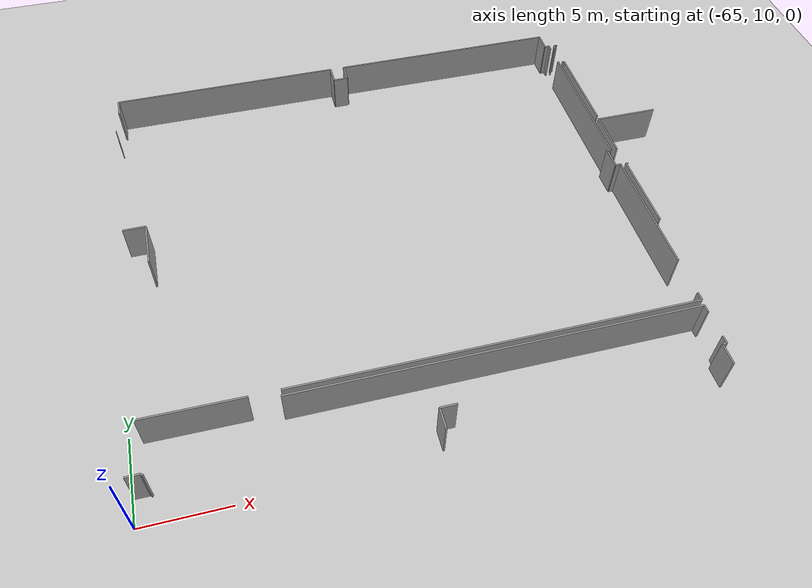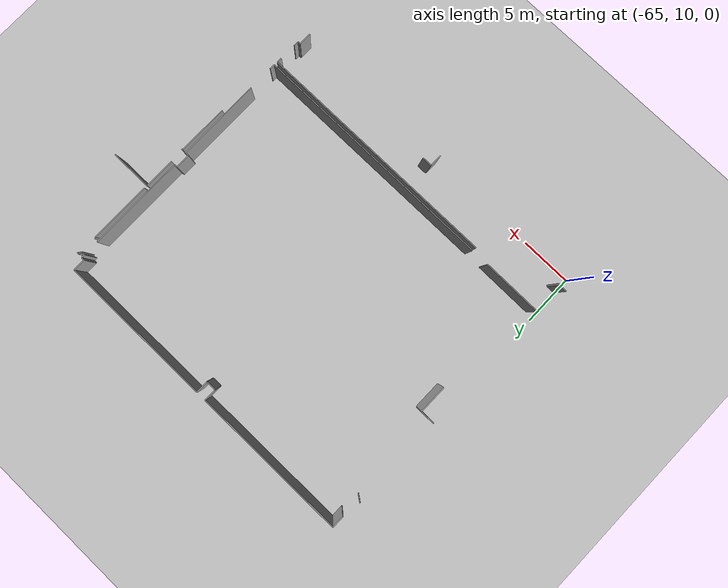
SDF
<sdf version="1.6">
 <world name="default">
  <model name="ground_plane">
   <static>1</static>
   <link name="link">
    <collision name="collision">
     <geometry><plane><normal>0 0 1</normal><size>100 100</size></plane></geometry>
     <surface><friction><ode><mu>100</mu><mu2>50</mu2></ode></friction></surface>
    </collision>
    <visual name="visual">
     <cast_shadows>0</cast_shadows>
     <geometry><plane><normal>0 0 1</normal><size>100 100</size></plane></geometry>
     <material>
      <script><uri>file://media/materials/scripts/gazebo.material</uri><name>Gazebo/Grey</name></script>
     </material>
    </visual>
   </link>
  </model>
  <model name="0510035737_A_40_1_105">
   <static>1</static>
   <link name="Wall_26">
    <collision name="Wall_26_Collision">
     <geometry><box><size>2.81122303073 0.1 2.5</size></box></geometry>
     <pose>1.40561151536 0 1.25 0 0 0</pose>
    </collision>
    <visual name="Wall_26_Visual">
     <pose>1.40561151536 0 1.25 0 0 0</pose>
     <geometry><box><size>2.81122303073 0.1 2.5</size></box></geometry>
     <material>
      <script><uri>file://media/materials/scripts/gazebo.material</uri><name>Gazebo/Grey</name></script>
      <ambient>1 1 1 1</ambient>
     </material>
    </visual>
    <pose>17.3302405389 -21.0029551015 0 0 0 1.57079632679</pose>
   </link>
   <link name="Wall_27">
    <collision name="Wall_27_Collision">
     <geometry><box><size>1.40421340282 0.1 2.5</size></box></geometry>
     <pose>0.702106701408 0 1.25 0 0 0</pose>
    </collision>
    <visual name="Wall_27_Visual">
     <pose>0.702106701408 0 1.25 0 0 0</pose>
     <geometry><box><size>1.40421340282 0.1 2.5</size></box></geometry>
     <material>
      <script><uri>file://media/materials/scripts/gazebo.material</uri><name>Gazebo/Grey</name></script>
      <ambient>1 1 1 1</ambient>
     </material>
    </visual>
    <pose>17.3302405389 -18.1917320708 0 0 0 3.14159265359</pose>
   </link>
   <link name="Wall_29">
    <collision name="Wall_29_Collision">
     <geometry><box><size>0.0368593308125 0.1 2.5</size></box></geometry>
     <pose>0.0184296654062 0 1.25 0 0 0</pose>
    </collision>
    <visual name="Wall_29_Visual">
     <pose>0.0184296654062 0 1.25 0 0 0</pose>
     <geometry><box><size>0.0368593308125 0.1 2.5</size></box></geometry>
     <material>
      <script><uri>file://media/materials/scripts/gazebo.material</uri><name>Gazebo/Grey</name></script>
      <ambient>1 1 1 1</ambient>
     </material>
    </visual>
    <pose>15.9260271361 -9.13679260271 0 0 0 3.14159265359</pose>
   </link>
   <link name="Wall_33">
    <collision name="Wall_33_Collision">
     <geometry><box><size>1.20974865749 0.1 2.5</size></box></geometry>
     <pose>0.604874328747 0 1.25 0 0 0</pose>
    </collision>
    <visual name="Wall_33_Visual">
     <pose>0.604874328747 0 1.25 0 0 0</pose>
     <geometry><box><size>1.20974865749 0.1 2.5</size></box></geometry>
     <material>
      <script><uri>file://media/materials/scripts/gazebo.material</uri><name>Gazebo/Grey</name></script>
      <ambient>1 1 1 1</ambient>
     </material>
    </visual>
    <pose>16.189634902 -7.36652791459 0 0 0 1.57079632679</pose>
   </link>
   <link name="Wall_34">
    <collision name="Wall_34_Collision">
     <geometry><box><size>15.0515712879 0.1 2.5</size></box></geometry>
     <pose>7.52578564393 0 1.25 0 0 0</pose>
    </collision>
    <visual name="Wall_34_Visual">
     <pose>7.52578564393 0 1.25 0 0 0</pose>
     <geometry><box><size>15.0515712879 0.1 2.5</size></box></geometry>
     <material>
      <script><uri>file://media/materials/scripts/gazebo.material</uri><name>Gazebo/Grey</name></script>
      <ambient>1 1 1 1</ambient>
     </material>
    </visual>
    <pose>16.189634902 -6.15677925709 0 0 0 0.0</pose>
   </link>
   <link name="Wall_35">
    <collision name="Wall_35_Collision">
     <geometry><box><size>1.22296717613 0.1 2.5</size></box></geometry>
     <pose>0.611483588065 0 1.25 0 0 0</pose>
    </collision>
    <visual name="Wall_35_Visual">
     <pose>0.611483588065 0 1.25 0 0 0</pose>
     <geometry><box><size>1.22296717613 0.1 2.5</size></box></geometry>
     <material>
      <script><uri>file://media/materials/scripts/gazebo.material</uri><name>Gazebo/Grey</name></script>
      <ambient>1 1 1 1</ambient>
     </material>
    </visual>
    <pose>31.2412061898 -6.15677925709 0 0 0 -1.57079632679</pose>
   </link>
   <link name="Wall_36">
    <collision name="Wall_36_Collision">
     <geometry><box><size>0.961138826221 0.1 2.5</size></box></geometry>
     <pose>0.48056941311 0 1.25 0 0 0</pose>
    </collision>
    <visual name="Wall_36_Visual">
     <pose>0.48056941311 0 1.25 0 0 0</pose>
     <geometry><box><size>0.961138826221 0.1 2.5</size></box></geometry>
     <material>
      <script><uri>file://media/materials/scripts/gazebo.material</uri><name>Gazebo/Grey</name></script>
      <ambient>1 1 1 1</ambient>
     </material>
    </visual>
    <pose>31.2412061898 -7.37974643322 0 0 0 0.0</pose>
   </link>
   <link name="Wall_37">
    <collision name="Wall_37_Collision">
     <geometry><box><size>1.22118776016 0.1 2.5</size></box></geometry>
     <pose>0.61059388008 0 1.25 0 0 0</pose>
    </collision>
    <visual name="Wall_37_Visual">
     <pose>0.61059388008 0 1.25 0 0 0</pose>
     <geometry><box><size>1.22118776016 0.1 2.5</size></box></geometry>
     <material>
      <script><uri>file://media/materials/scripts/gazebo.material</uri><name>Gazebo/Grey</name></script>
      <ambient>1 1 1 1</ambient>
     </material>
    </visual>
    <pose>32.202345016 -7.37974643322 0 0 0 1.57079632679</pose>
   </link>
   <link name="Wall_38">
    <collision name="Wall_38_Collision">
     <geometry><box><size>15.0469956468 0.1 2.5</size></box></geometry>
     <pose>7.52349782339 0 1.25 0 0 0</pose>
    </collision>
    <visual name="Wall_38_Visual">
     <pose>7.52349782339 0 1.25 0 0 0</pose>
     <geometry><box><size>15.0469956468 0.1 2.5</size></box></geometry>
     <material>
      <script><uri>file://media/materials/scripts/gazebo.material</uri><name>Gazebo/Grey</name></script>
      <ambient>1 1 1 1</ambient>
     </material>
    </visual>
    <pose>32.202345016 -6.15855867306 0 0 0 0.0</pose>
   </link>
   <link name="Wall_39">
    <collision name="Wall_39_Collision">
     <geometry><box><size>1.1972927457 0.1 2.5</size></box></geometry>
     <pose>0.598646372851 0 1.25 0 0 0</pose>
    </collision>
    <visual name="Wall_39_Visual">
     <pose>0.598646372851 0 1.25 0 0 0</pose>
     <geometry><box><size>1.1972927457 0.1 2.5</size></box></geometry>
     <material>
      <script><uri>file://media/materials/scripts/gazebo.material</uri><name>Gazebo/Grey</name></script>
      <ambient>1 1 1 1</ambient>
     </material>
    </visual>
    <pose>47.2493406628 -6.15855867306 0 0 0 -1.57079632679</pose>
   </link>
   <link name="Wall_40">
    <collision name="Wall_40_Collision">
     <geometry><box><size>0.305805344603 0.1 2.5</size></box></geometry>
     <pose>0.152902672301 0 1.25 0 0 0</pose>
    </collision>
    <visual name="Wall_40_Visual">
     <pose>0.152902672301 0 1.25 0 0 0</pose>
     <geometry><box><size>0.305805344603 0.1 2.5</size></box></geometry>
     <material>
      <script><uri>file://media/materials/scripts/gazebo.material</uri><name>Gazebo/Grey</name></script>
      <ambient>1 1 1 1</ambient>
     </material>
    </visual>
    <pose>47.2493406628 -7.35585141877 0 0 0 0.0</pose>
   </link>
   <link name="Wall_41">
    <collision name="Wall_41_Collision">
     <geometry><box><size>0.372660544628 0.1 2.5</size></box></geometry>
     <pose>0.186330272314 0 1.25 0 0 0</pose>
    </collision>
    <visual name="Wall_41_Visual">
     <pose>0.186330272314 0 1.25 0 0 0</pose>
     <geometry><box><size>0.372660544628 0.1 2.5</size></box></geometry>
     <material>
      <script><uri>file://media/materials/scripts/gazebo.material</uri><name>Gazebo/Grey</name></script>
      <ambient>1 1 1 1</ambient>
     </material>
    </visual>
    <pose>47.5551460074 -7.35585141877 0 0 0 -1.57079632679</pose>
   </link>
   <link name="Wall_42">
    <collision name="Wall_42_Collision">
     <geometry><box><size>9.49674303327 0.1 2.5</size></box></geometry>
     <pose>4.74837151663 0 1.25 0 0 0</pose>
    </collision>
    <visual name="Wall_42_Visual">
     <pose>4.74837151663 0 1.25 0 0 0</pose>
     <geometry><box><size>9.49674303327 0.1 2.5</size></box></geometry>
     <material>
      <script><uri>file://media/materials/scripts/gazebo.material</uri><name>Gazebo/Grey</name></script>
      <ambient>1 1 1 1</ambient>
     </material>
    </visual>
    <pose>47.5551460074 -9.24228654952 0 0 0 -1.57079632679</pose>
   </link>
   <link name="Wall_43">
    <collision name="Wall_43_Collision">
     <geometry><box><size>0.279368307331 0.1 2.5</size></box></geometry>
     <pose>0.139684153665 0 1.25 0 0 0</pose>
    </collision>
    <visual name="Wall_43_Visual">
     <pose>0.139684153665 0 1.25 0 0 0</pose>
     <geometry><box><size>0.279368307331 0.1 2.5</size></box></geometry>
     <material>
      <script><uri>file://media/materials/scripts/gazebo.material</uri><name>Gazebo/Grey</name></script>
      <ambient>1 1 1 1</ambient>
     </material>
    </visual>
    <pose>47.5551460074 -18.7390295828 0 0 0 3.14159265359</pose>
   </link>
   <link name="Wall_44">
    <collision name="Wall_44_Collision">
     <geometry><box><size>1.40624702107 0.1 2.5</size></box></geometry>
     <pose>0.703123510534 0 1.25 0 0 0</pose>
    </collision>
    <visual name="Wall_44_Visual">
     <pose>0.703123510534 0 1.25 0 0 0</pose>
     <geometry><box><size>1.40624702107 0.1 2.5</size></box></geometry>
     <material>
      <script><uri>file://media/materials/scripts/gazebo.material</uri><name>Gazebo/Grey</name></script>
      <ambient>1 1 1 1</ambient>
     </material>
    </visual>
    <pose>47.2757777001 -18.7390295828 0 0 0 -1.57079632679</pose>
   </link>
   <link name="Wall_45">
    <collision name="Wall_45_Collision">
     <geometry><box><size>0.328175145372 0.1 2.5</size></box></geometry>
     <pose>0.164087572686 0 1.25 0 0 0</pose>
    </collision>
    <visual name="Wall_45_Visual">
     <pose>0.164087572686 0 1.25 0 0 0</pose>
     <geometry><box><size>0.328175145372 0.1 2.5</size></box></geometry>
     <material>
      <script><uri>file://media/materials/scripts/gazebo.material</uri><name>Gazebo/Grey</name></script>
      <ambient>1 1 1 1</ambient>
     </material>
    </visual>
    <pose>47.2757777001 -20.1452766039 0 0 0 0.0</pose>
   </link>
   <link name="Wall_46">
    <collision name="Wall_46_Collision">
     <geometry><box><size>8.22598582822 0.1 2.5</size></box></geometry>
     <pose>4.11299291411 0 1.25 0 0 0</pose>
    </collision>
    <visual name="Wall_46_Visual">
     <pose>4.11299291411 0 1.25 0 0 0</pose>
     <geometry><box><size>8.22598582822 0.1 2.5</size></box></geometry>
     <material>
      <script><uri>file://media/materials/scripts/gazebo.material</uri><name>Gazebo/Grey</name></script>
      <ambient>1 1 1 1</ambient>
     </material>
    </visual>
    <pose>47.6039528455 -20.1452766039 0 0 0 -1.57079632679</pose>
   </link>
   <link name="Wall_47">
    <collision name="Wall_47_Collision">
     <geometry><box><size>0.518064249627 0.1 2.5</size></box></geometry>
     <pose>0.259032124813 0 1.25 0 0 0</pose>
    </collision>
    <visual name="Wall_47_Visual">
     <pose>0.259032124813 0 1.25 0 0 0</pose>
     <geometry><box><size>0.518064249627 0.1 2.5</size></box></geometry>
     <material>
      <script><uri>file://media/materials/scripts/gazebo.material</uri><name>Gazebo/Grey</name></script>
      <ambient>1 1 1 1</ambient>
     </material>
    </visual>
    <pose>47.6039528455 -30.8014362429 0 0 0 -1.57079632679</pose>
   </link>
   <link name="Wall_48">
    <collision name="Wall_48_Collision">
     <geometry><box><size>24.0973594738 0.1 2.5</size></box></geometry>
     <pose>12.0486797369 0 1.25 0 0 0</pose>
    </collision>
    <visual name="Wall_48_Visual">
     <pose>12.0486797369 0 1.25 0 0 0</pose>
     <geometry><box><size>24.0973594738 0.1 2.5</size></box></geometry>
     <material>
      <script><uri>file://media/materials/scripts/gazebo.material</uri><name>Gazebo/Grey</name></script>
      <ambient>1 1 1 1</ambient>
     </material>
    </visual>
    <pose>47.6039528455 -31.3195004925 0 0 0 3.14159265359</pose>
   </link>
   <link name="Wall_49">
    <collision name="Wall_49_Collision">
     <geometry><box><size>5.86281006739 0.1 2.5</size></box></geometry>
     <pose>2.9314050337 0 1.25 0 0 0</pose>
    </collision>
    <visual name="Wall_49_Visual">
     <pose>2.9314050337 0 1.25 0 0 0</pose>
     <geometry><box><size>5.86281006739 0.1 2.5</size></box></geometry>
     <material>
      <script><uri>file://media/materials/scripts/gazebo.material</uri><name>Gazebo/Grey</name></script>
      <ambient>1 1 1 1</ambient>
     </material>
    </visual>
    <pose>21.7752216326 -31.3195004925 0 0 0 3.13461188852</pose>
   </link>
   <link name="Wall_56">
    <collision name="Wall_56_Collision">
     <geometry><box><size>24.1095611833 0.1 2.5</size></box></geometry>
     <pose>12.0547805917 0 1.25 0 0 0</pose>
    </collision>
    <visual name="Wall_56_Visual">
     <pose>12.0547805917 0 1.25 0 0 0</pose>
     <geometry><box><size>24.1095611833 0.1 2.5</size></box></geometry>
     <material>
      <script><uri>file://media/materials/scripts/gazebo.material</uri><name>Gazebo/Grey</name></script>
      <ambient>1 1 1 1</ambient>
     </material>
    </visual>
    <pose>23.4374503511 -31.6852975755 0 0 0 0.0</pose>
   </link>
   <link name="Wall_57">
    <collision name="Wall_57_Collision">
     <geometry><box><size>0.492898223762 0.1 2.5</size></box></geometry>
     <pose>0.246449111881 0 1.25 0 0 0</pose>
    </collision>
    <visual name="Wall_57_Visual">
     <pose>0.246449111881 0 1.25 0 0 0</pose>
     <geometry><box><size>0.492898223762 0.1 2.5</size></box></geometry>
     <material>
      <script><uri>file://media/materials/scripts/gazebo.material</uri><name>Gazebo/Grey</name></script>
      <ambient>1 1 1 1</ambient>
     </material>
    </visual>
    <pose>47.5470115344 -31.6852975755 0 0 0 -1.57079632679</pose>
   </link>
   <link name="Wall_58">
    <collision name="Wall_58_Collision">
     <geometry><box><size>0.483746941629 0.1 2.5</size></box></geometry>
     <pose>0.241873470814 0 1.25 0 0 0</pose>
    </collision>
    <visual name="Wall_58_Visual">
     <pose>0.241873470814 0 1.25 0 0 0</pose>
     <geometry><box><size>0.483746941629 0.1 2.5</size></box></geometry>
     <material>
      <script><uri>file://media/materials/scripts/gazebo.material</uri><name>Gazebo/Grey</name></script>
      <ambient>1 1 1 1</ambient>
     </material>
    </visual>
    <pose>47.5470115344 -33.8244097741 0 0 0 -1.57079632679</pose>
   </link>
   <link name="Wall_59">
    <collision name="Wall_59_Collision">
     <geometry><box><size>0.269708620635 0.1 2.5</size></box></geometry>
     <pose>0.134854310317 0 1.25 0 0 0</pose>
    </collision>
    <visual name="Wall_59_Visual">
     <pose>0.134854310317 0 1.25 0 0 0</pose>
     <geometry><box><size>0.269708620635 0.1 2.5</size></box></geometry>
     <material>
      <script><uri>file://media/materials/scripts/gazebo.material</uri><name>Gazebo/Grey</name></script>
      <ambient>1 1 1 1</ambient>
     </material>
    </visual>
    <pose>47.5470115344 -34.3081567157 0 0 0 3.14159265359</pose>
   </link>
   <link name="Wall_60">
    <collision name="Wall_60_Collision">
     <geometry><box><size>1.25397985447 0.1 2.5</size></box></geometry>
     <pose>0.626989927235 0 1.25 0 0 0</pose>
    </collision>
    <visual name="Wall_60_Visual">
     <pose>0.626989927235 0 1.25 0 0 0</pose>
     <geometry><box><size>1.25397985447 0.1 2.5</size></box></geometry>
     <material>
      <script><uri>file://media/materials/scripts/gazebo.material</uri><name>Gazebo/Grey</name></script>
      <ambient>1 1 1 1</ambient>
     </material>
    </visual>
    <pose>47.2773029138 -34.3081567157 0 0 0 -1.57079632679</pose>
   </link>
   <link name="Wall_63">
    <collision name="Wall_63_Collision">
     <geometry><box><size>0.975374153983 0.1 2.5</size></box></geometry>
     <pose>0.487687076992 0 1.25 0 0 0</pose>
    </collision>
    <visual name="Wall_63_Visual">
     <pose>0.487687076992 0 1.25 0 0 0</pose>
     <geometry><box><size>0.975374153983 0.1 2.5</size></box></geometry>
     <material>
      <script><uri>file://media/materials/scripts/gazebo.material</uri><name>Gazebo/Grey</name></script>
      <ambient>1 1 1 1</ambient>
     </material>
    </visual>
    <pose>32.2310698739 -34.3254424708 0 0 0 3.14159265359</pose>
   </link>
   <link name="Wall_64">
    <collision name="Wall_64_Collision">
     <geometry><box><size>1.22855962632 0.1 2.5</size></box></geometry>
     <pose>0.614279813161 0 1.25 0 0 0</pose>
    </collision>
    <visual name="Wall_64_Visual">
     <pose>0.614279813161 0 1.25 0 0 0</pose>
     <geometry><box><size>1.22855962632 0.1 2.5</size></box></geometry>
     <material>
      <script><uri>file://media/materials/scripts/gazebo.material</uri><name>Gazebo/Grey</name></script>
      <ambient>1 1 1 1</ambient>
     </material>
    </visual>
    <pose>31.2556957199 -34.3254424708 0 0 0 -1.57079632679</pose>
   </link>
   <link name="Wall_67">
    <collision name="Wall_67_Collision">
     <geometry><box><size>0.153682256566 0.1 2.5</size></box></geometry>
     <pose>0.0768411282828 0 1.25 0 0 0</pose>
    </collision>
    <visual name="Wall_67_Visual">
     <pose>0.0768411282828 0 1.25 0 0 0</pose>
     <geometry><box><size>0.153682256566 0.1 2.5</size></box></geometry>
     <material>
      <script><uri>file://media/materials/scripts/gazebo.material</uri><name>Gazebo/Grey</name></script>
      <ambient>1 1 1 1</ambient>
     </material>
    </visual>
    <pose>16.220393378 -34.395093896 0 0 0 2.47460149163</pose>
   </link>
   <link name="Wall_68">
    <collision name="Wall_68_Collision">
     <geometry><box><size>0.805567029964 0.1 2.5</size></box></geometry>
     <pose>0.402783514982 0 1.25 0 0 0</pose>
    </collision>
    <visual name="Wall_68_Visual">
     <pose>0.402783514982 0 1.25 0 0 0</pose>
     <geometry><box><size>0.805567029964 0.1 2.5</size></box></geometry>
     <material>
      <script><uri>file://media/materials/scripts/gazebo.material</uri><name>Gazebo/Grey</name></script>
      <ambient>1 1 1 1</ambient>
     </material>
    </visual>
    <pose>16.0996472943 -34.3000222427 0 0 0 3.14159265359</pose>
   </link>
   <link name="Wall_72">
    <collision name="Wall_72_Collision">
     <geometry><box><size>5.98239649201 0.1 2.5</size></box></geometry>
     <pose>2.991198246 0 1.25 0 0 0</pose>
    </collision>
    <visual name="Wall_72_Visual">
     <pose>2.991198246 0 1.25 0 0 0</pose>
     <geometry><box><size>5.98239649201 0.1 2.5</size></box></geometry>
     <material>
      <script><uri>file://media/materials/scripts/gazebo.material</uri><name>Gazebo/Grey</name></script>
      <ambient>1 1 1 1</ambient>
     </material>
    </visual>
    <pose>47.975596581 -15.4501604652 0 0 0 1.57079632679</pose>
   </link>
   <link name="Wall_73">
    <collision name="Wall_73_Collision">
     <geometry><box><size>0.20501079106 0.1 2.5</size></box></geometry>
     <pose>0.10250539553 0 1.25 0 0 0</pose>
    </collision>
    <visual name="Wall_73_Visual">
     <pose>0.10250539553 0 1.25 0 0 0</pose>
     <geometry><box><size>0.20501079106 0.1 2.5</size></box></geometry>
     <material>
      <script><uri>file://media/materials/scripts/gazebo.material</uri><name>Gazebo/Grey</name></script>
      <ambient>1 1 1 1</ambient>
     </material>
    </visual>
    <pose>47.975596581 -9.46776397318 0 0 0 2.05440800518</pose>
   </link>
   <link name="Wall_74">
    <collision name="Wall_74_Collision">
     <geometry><box><size>0.171460710797 0.1 2.5</size></box></geometry>
     <pose>0.0857303553987 0 1.25 0 0 0</pose>
    </collision>
    <visual name="Wall_74_Visual">
     <pose>0.0857303553987 0 1.25 0 0 0</pose>
     <geometry><box><size>0.171460710797 0.1 2.5</size></box></geometry>
     <material>
      <script><uri>file://media/materials/scripts/gazebo.material</uri><name>Gazebo/Grey</name></script>
      <ambient>1 1 1 1</ambient>
     </material>
    </visual>
    <pose>47.8802707254 -7.72952877252 0 0 0 1.03215663649</pose>
   </link>
   <link name="Wall_75">
    <collision name="Wall_75_Collision">
     <geometry><box><size>0.175907978774 0.1 2.5</size></box></geometry>
     <pose>0.0879539893871 0 1.25 0 0 0</pose>
    </collision>
    <visual name="Wall_75_Visual">
     <pose>0.0879539893871 0 1.25 0 0 0</pose>
     <geometry><box><size>0.175907978774 0.1 2.5</size></box></geometry>
     <material>
      <script><uri>file://media/materials/scripts/gazebo.material</uri><name>Gazebo/Grey</name></script>
      <ambient>1 1 1 1</ambient>
     </material>
    </visual>
    <pose>47.9682247148 -7.58234565155 0 0 0 1.57079632679</pose>
   </link>
   <link name="Wall_76">
    <collision name="Wall_76_Collision">
     <geometry><box><size>0.194718947603 0.1 2.5</size></box></geometry>
     <pose>0.0973594738013 0 1.25 0 0 0</pose>
    </collision>
    <visual name="Wall_76_Visual">
     <pose>0.0973594738013 0 1.25 0 0 0</pose>
     <geometry><box><size>0.194718947603 0.1 2.5</size></box></geometry>
     <material>
      <script><uri>file://media/materials/scripts/gazebo.material</uri><name>Gazebo/Grey</name></script>
      <ambient>1 1 1 1</ambient>
     </material>
    </visual>
    <pose>47.9682247148 -7.40643767278 0 0 0 0.0</pose>
   </link>
   <link name="Wall_87">
    <collision name="Wall_87_Collision">
     <geometry><box><size>4.04283308443 0.1 2.5</size></box></geometry>
     <pose>2.02141654221 0 1.25 0 0 0</pose>
    </collision>
    <visual name="Wall_87_Visual">
     <pose>2.02141654221 0 1.25 0 0 0</pose>
     <geometry><box><size>4.04283308443 0.1 2.5</size></box></geometry>
     <material>
      <script><uri>file://media/materials/scripts/gazebo.material</uri><name>Gazebo/Grey</name></script>
      <ambient>1 1 1 1</ambient>
     </material>
    </visual>
    <pose>47.9565314099 -15.7559658098 0 0 0 0.0</pose>
   </link>
   <link name="Wall_96">
    <collision name="Wall_96_Collision">
     <geometry><box><size>4.95516507261 0.1 2.5</size></box></geometry>
     <pose>2.4775825363 0 1.25 0 0 0</pose>
    </collision>
    <visual name="Wall_96_Visual">
     <pose>2.4775825363 0 1.25 0 0 0</pose>
     <geometry><box><size>4.95516507261 0.1 2.5</size></box></geometry>
     <material>
      <script><uri>file://media/materials/scripts/gazebo.material</uri><name>Gazebo/Grey</name></script>
      <ambient>1 1 1 1</ambient>
     </material>
    </visual>
    <pose>47.9839852563 -25.1339963776 0 0 0 1.57079632679</pose>
   </link>
   <link name="Wall_97">
    <collision name="Wall_97_Collision">
     <geometry><box><size>0.128880556703 0.1 2.5</size></box></geometry>
     <pose>0.0644402783515 0 1.25 0 0 0</pose>
    </collision>
    <visual name="Wall_97_Visual">
     <pose>0.0644402783515 0 1.25 0 0 0</pose>
     <geometry><box><size>0.128880556703 0.1 2.5</size></box></geometry>
     <material>
      <script><uri>file://media/materials/scripts/gazebo.material</uri><name>Gazebo/Grey</name></script>
      <ambient>1 1 1 1</ambient>
     </material>
    </visual>
    <pose>47.9839852563 -20.178831305 0 0 0 0.0</pose>
   </link>
   <link name="Wall_102">
    <collision name="Wall_102_Collision">
     <geometry><box><size>3.00774219103 0.1 2.5</size></box></geometry>
     <pose>1.50387109552 0 1.25 0 0 0</pose>
    </collision>
    <visual name="Wall_102_Visual">
     <pose>1.50387109552 0 1.25 0 0 0</pose>
     <geometry><box><size>3.00774219103 0.1 2.5</size></box></geometry>
     <material>
      <script><uri>file://media/materials/scripts/gazebo.material</uri><name>Gazebo/Grey</name></script>
      <ambient>1 1 1 1</ambient>
     </material>
    </visual>
    <pose>47.9677163103 -18.7636872041 0 0 0 1.57451503852</pose>
   </link>
   <pose>-80.2 45.8857980363 0 0 0 0</pose>
  </model>
 </world>
</sdf>
